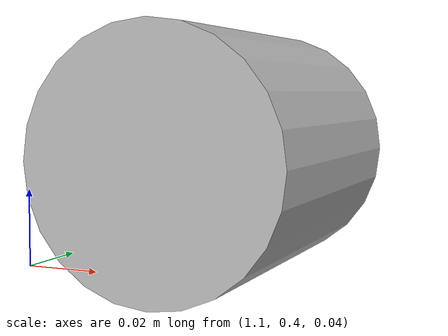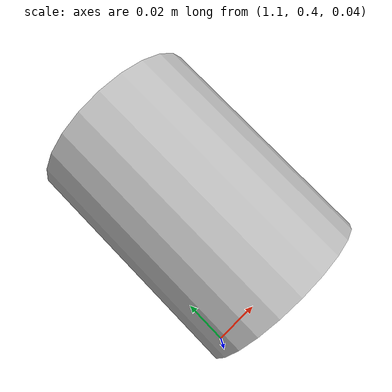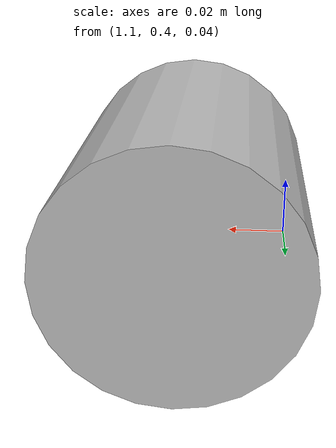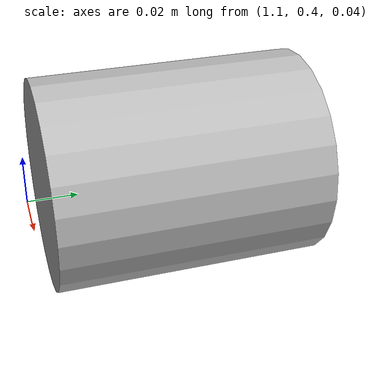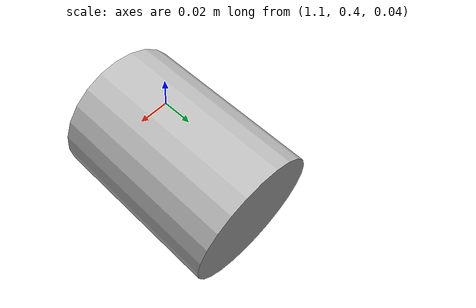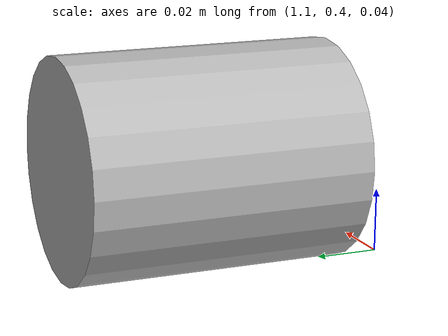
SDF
<?xml version="1.0" ?>
<sdf version="1.4">
  <model name="shelf1_metal1_3">
    <link name="body">
      <pose>0 0 0 0 0 0</pose>
      <inertial>
        <pose>   1.132751   0.448847   0.067000 0 0 0</pose>
        <mass>0.5</mass>
        <inertia>
          <ixx>0.01</ixx>
          <ixy>0</ixy>
          <ixz>0</ixz>
          <iyy>0.01</iyy>
          <iyz>0</iyz>
          <izz>0.01</izz>
        </inertia>
      </inertial>
      <collision name="collision">
        <geometry>
          <mesh>
            <uri>model://bookshelf/shelf1_items/metal1_3/metal1_3.dae</uri>
          </mesh>
        </geometry>
      </collision>
      <visual name="visual">
        <geometry>
          <mesh>
            <uri>model://bookshelf/shelf1_items/metal1_3/metal1_3.dae</uri>
          </mesh>
        </geometry>
      </visual>
    </link>
  </model>
</sdf>
